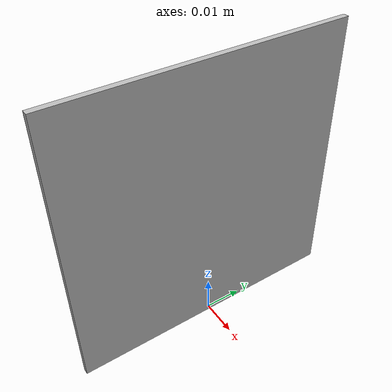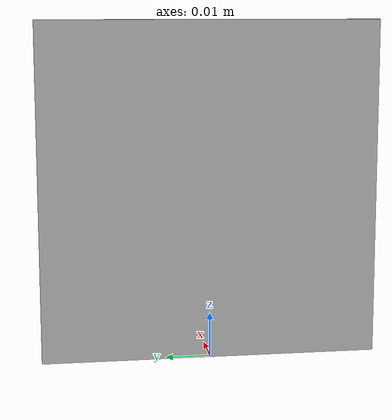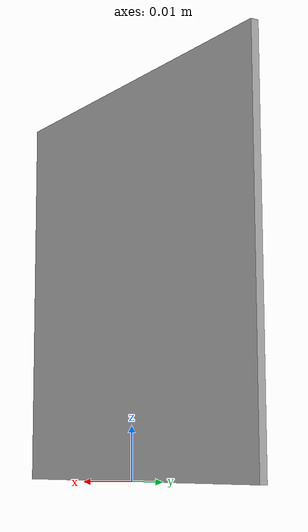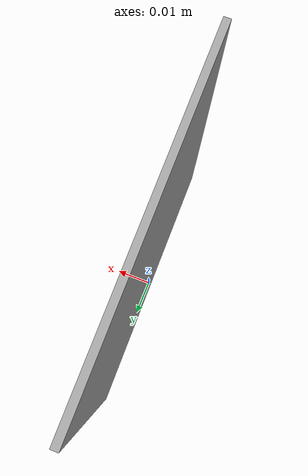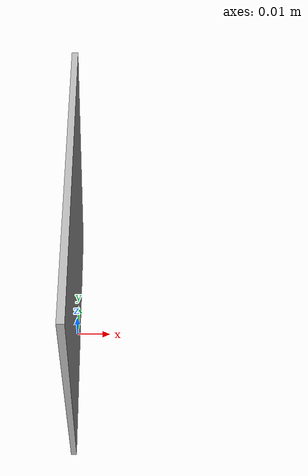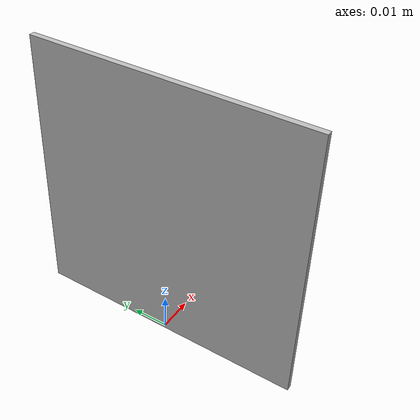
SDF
<?xml version="1.0" ?><sdf version="1.6">
  <model name="Marker2">
    <static>true</static>
    <link name="link">
      <visual name="visual">
        <geometry>
          <mesh>
            <uri>model://marker2/meshes/Marker2.dae</uri>
            <scale>0.15 0.15 0.15</scale></mesh>
          </geometry>
      </visual>
    </link>
  </model>
</sdf>
